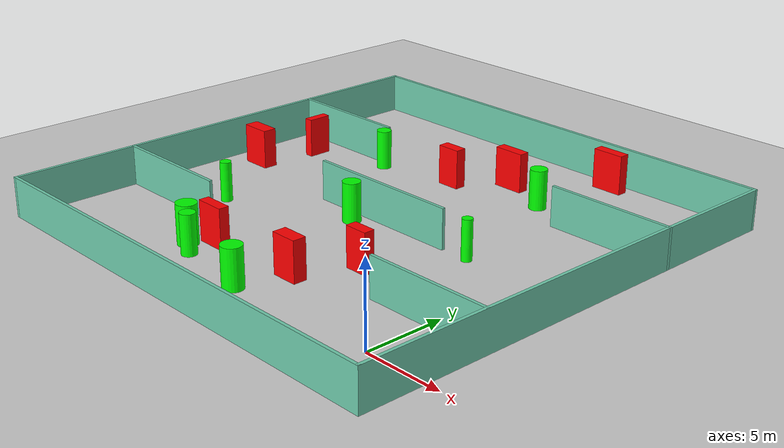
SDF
<sdf version="1.7">
 <world name="default">
  <light name="sun" type="directional">
   <pose>0 0 10 0 -0 0</pose>
   <diffuse>0.8 0.8 0.8 1</diffuse>
   <specular>0.2 0.2 0.2 1</specular>
   <attenuation>
    <range>1000</range>
    <constant>0.9</constant>
    <linear>0.01</linear>
    <quadratic>0.001</quadratic>
   </attenuation>
   <direction>-0.5 0.1 -0.9</direction>
   <spot><inner_angle>0</inner_angle><outer_angle>0</outer_angle><falloff>0</falloff></spot>
  </light>
  <model name="ground_plane">
   <static>1</static>
   <link name="link">
    <collision name="collision">
     <geometry><plane><normal>0 0 1</normal><size>100 100</size></plane></geometry>
     <surface>
      <contact><collide_bitmask>65535</collide_bitmask></contact>
      <friction><ode><mu>100</mu><mu2>50</mu2></ode></friction>
     </surface>
    </collision>
    <visual name="visual">
     <cast_shadows>0</cast_shadows>
     <geometry><plane><normal>0 0 1</normal><size>100 100</size></plane></geometry>
     <material>
      <script><uri>file://media/materials/scripts/gazebo.material</uri><name>Gazebo/Grey</name></script>
     </material>
    </visual>
   </link>
  </model>
  <gravity>0 0 -9.8</gravity>
  <magnetic_field>6e-06 2.3e-05 -4.2e-05</magnetic_field>
  <atmosphere type="adiabatic"/>
  <physics type="ode">
   <max_step_size>0.001</max_step_size>
   <real_time_factor>1</real_time_factor>
   <real_time_update_rate>1000</real_time_update_rate>
  </physics>
  <scene><ambient>0.4 0.4 0.4 1</ambient><background>0.7 0.7 0.7 1</background><shadows>1</shadows></scene>
  <spherical_coordinates>
   <surface_model>EARTH_WGS84</surface_model>
   <latitude_deg>0</latitude_deg>
   <longitude_deg>0</longitude_deg>
   <elevation>0</elevation>
   <heading_deg>0</heading_deg>
  </spherical_coordinates>
  <model name="my_base_walls">
   <link name="Wall_10">
    <collision name="Wall_10_Collision">
     <geometry><box><size>8.2 0.2 2.5</size></box></geometry>
     <pose>0 0 1.25 0 -0 0</pose>
    </collision>
    <visual name="Wall_10_Visual">
     <pose>0 0 1.25 0 -0 0</pose>
     <geometry><box><size>8.2 0.2 2.5</size></box></geometry>
     <material>
      <script><uri>file://media/materials/scripts/gazebo.material</uri><name>Gazebo/Grey</name></script>
      <ambient>0.435294 0.796078 0.67451 1</ambient>
     </material>
     <meta><layer>0</layer></meta>
    </visual>
    <pose>-11 -7 0 0 -0 0</pose>
   </link>
   <link name="Wall_12">
    <collision name="Wall_12_Collision">
     <geometry><box><size>8.2 0.2 2.5</size></box></geometry>
     <pose>0 0 1.25 0 -0 0</pose>
    </collision>
    <visual name="Wall_12_Visual">
     <pose>0 0 1.25 0 -0 0</pose>
     <geometry><box><size>8.2 0.2 2.5</size></box></geometry>
     <material>
      <script><uri>file://media/materials/scripts/gazebo.material</uri><name>Gazebo/Grey</name></script>
      <ambient>0.435294 0.796078 0.67451 1</ambient>
     </material>
     <meta><layer>0</layer></meta>
    </visual>
    <pose>-11 7 0 0 -0 0</pose>
   </link>
   <link name="Wall_14">
    <collision name="Wall_14_Collision">
     <geometry><box><size>8.2 0.2 2.5</size></box></geometry>
     <pose>0 0 1.25 0 -0 0</pose>
    </collision>
    <visual name="Wall_14_Visual">
     <pose>0 0 1.25 0 -0 0</pose>
     <geometry><box><size>8.2 0.2 2.5</size></box></geometry>
     <material>
      <script><uri>file://media/materials/scripts/gazebo.material</uri><name>Gazebo/Grey</name></script>
      <ambient>0.435294 0.796078 0.67451 1</ambient>
     </material>
     <meta><layer>0</layer></meta>
    </visual>
    <pose>11 7 0 0 -0 3.14159</pose>
   </link>
   <link name="Wall_16">
    <collision name="Wall_16_Collision">
     <geometry><box><size>10.2 0.2 2.5</size></box></geometry>
     <pose>0 0 1.25 0 -0 0</pose>
    </collision>
    <visual name="Wall_16_Visual">
     <pose>0 0 1.25 0 -0 0</pose>
     <geometry><box><size>10.2 0.2 2.5</size></box></geometry>
     <material>
      <script><uri>file://media/materials/scripts/gazebo.material</uri><name>Gazebo/Grey</name></script>
      <ambient>0.435294 0.796078 0.67451 1</ambient>
     </material>
     <meta><layer>0</layer></meta>
    </visual>
    <pose>0 0 0 0 -0 3.14159</pose>
   </link>
   <link name="Wall_2">
    <collision name="Wall_2_Collision">
     <geometry><box><size>30.2 0.2 2.5</size></box></geometry>
     <pose>0 0 1.25 0 -0 0</pose>
    </collision>
    <visual name="Wall_2_Visual">
     <pose>0 0 1.25 0 -0 0</pose>
     <geometry><box><size>30.2 0.2 2.5</size></box></geometry>
     <material>
      <script><uri>file://media/materials/scripts/gazebo.material</uri><name>Gazebo/Grey</name></script>
      <ambient>0.435294 0.796078 0.67451 1</ambient>
     </material>
     <meta><layer>0</layer></meta>
    </visual>
    <pose>0 -15 0 0 -0 3.14159</pose>
   </link>
   <link name="Wall_3">
    <collision name="Wall_3_Collision">
     <geometry><box><size>30.2 0.2 2.5</size></box></geometry>
     <pose>0 0 1.25 0 -0 0</pose>
    </collision>
    <visual name="Wall_3_Visual">
     <pose>0 0 1.25 0 -0 0</pose>
     <geometry><box><size>30.2 0.2 2.5</size></box></geometry>
     <material>
      <script><uri>file://media/materials/scripts/gazebo.material</uri><name>Gazebo/Grey</name></script>
      <ambient>0.435294 0.796078 0.67451 1</ambient>
     </material>
     <meta><layer>0</layer></meta>
    </visual>
    <pose>-15 0 0 0 -0 1.5708</pose>
   </link>
   <link name="Wall_4">
    <collision name="Wall_4_Collision">
     <geometry><box><size>30.2 0.2 2.5</size></box></geometry>
     <pose>0 0 1.25 0 -0 0</pose>
    </collision>
    <visual name="Wall_4_Visual">
     <pose>0 0 1.25 0 -0 0</pose>
     <geometry><box><size>30.2 0.2 2.5</size></box></geometry>
     <material>
      <script><uri>file://media/materials/scripts/gazebo.material</uri><name>Gazebo/Grey</name></script>
      <ambient>0.435294 0.796078 0.67451 1</ambient>
     </material>
     <meta><layer>0</layer></meta>
    </visual>
    <pose>0 15 0 0 -0 0</pose>
   </link>
   <link name="Wall_6">
    <collision name="Wall_6_Collision">
     <geometry><box><size>30.2 0.2 2.5</size></box></geometry>
     <pose>0 0 1.25 0 -0 0</pose>
    </collision>
    <visual name="Wall_6_Visual">
     <pose>0 0 1.25 0 -0 0</pose>
     <geometry><box><size>30.2 0.2 2.5</size></box></geometry>
     <material>
      <script><uri>file://media/materials/scripts/gazebo.material</uri><name>Gazebo/Grey</name></script>
      <ambient>0.435294 0.796078 0.67451 1</ambient>
     </material>
     <meta><layer>0</layer></meta>
    </visual>
    <pose>15 0 0 0 -0 1.5708</pose>
   </link>
   <link name="Wall_8">
    <collision name="Wall_8_Collision">
     <geometry><box><size>8.2 0.2 2.5</size></box></geometry>
     <pose>0 0 1.25 0 -0 0</pose>
    </collision>
    <visual name="Wall_8_Visual">
     <pose>0 0 1.25 0 -0 0</pose>
     <geometry><box><size>8.2 0.2 2.5</size></box></geometry>
     <material>
      <script><uri>file://media/materials/scripts/gazebo.material</uri><name>Gazebo/Grey</name></script>
      <ambient>0.435294 0.796078 0.67451 1</ambient>
     </material>
     <meta><layer>0</layer></meta>
    </visual>
    <pose>11 -7 0 0 -0 3.14159</pose>
   </link>
   <static>1</static>
   <pose>-11 11 0 0 -0 0</pose>
  </model>
  <model name="cylinder1">
   <static>1</static>
   <link name="link">
    <inertial>
     <mass>1</mass>
     <inertia><ixx>0.5</ixx><ixy>0</ixy><ixz>0</ixz><iyy>0.5</iyy><iyz>0</iyz><izz>1</izz></inertia>
    </inertial>
    <collision name="collision">
     <geometry><cylinder><radius>0.4646212786020338</radius><length>2.5</length></cylinder></geometry>
    </collision>
    <visual name="visual">
     <geometry><cylinder><radius>0.4646212786020338</radius><length>2.5</length></cylinder></geometry>
     <material>
      <ambient>0 1 0 1</ambient>
      <diffuse>0 1 0 1</diffuse>
      <specular>0.1 0.1 0.1 1</specular>
      <emissive>0 0 0 0</emissive>
     </material>
    </visual>
   </link>
   <pose>-17.723985815289065 17.381715585066683 1.25 0 0 0</pose>
  </model>
  <model name="cylinder2">
   <static>1</static>
   <link name="link">
    <inertial>
     <mass>1</mass>
     <inertia><ixx>0.5</ixx><ixy>0</ixy><ixz>0</ixz><iyy>0.5</iyy><iyz>0</iyz><izz>1</izz></inertia>
    </inertial>
    <collision name="collision">
     <geometry><cylinder><radius>0.47420890911847235</radius><length>2.5</length></cylinder></geometry>
    </collision>
    <visual name="visual">
     <geometry><cylinder><radius>0.47420890911847235</radius><length>2.5</length></cylinder></geometry>
     <material>
      <ambient>0 1 0 1</ambient>
      <diffuse>0 1 0 1</diffuse>
      <specular>0.1 0.1 0.1 1</specular>
      <emissive>0 0 0 0</emissive>
     </material>
    </visual>
   </link>
   <pose>-14.925715013688789 0.30082503693919715 1.25 0 0 0</pose>
  </model>
  <model name="cylinder3">
   <static>1</static>
   <link name="link">
    <inertial>
     <mass>1</mass>
     <inertia><ixx>0.5</ixx><ixy>0</ixy><ixz>0</ixz><iyy>0.5</iyy><iyz>0</iyz><izz>1</izz></inertia>
    </inertial>
    <collision name="collision">
     <geometry><cylinder><radius>0.6299463656205889</radius><length>2.5</length></cylinder></geometry>
    </collision>
    <visual name="visual">
     <geometry><cylinder><radius>0.6299463656205889</radius><length>2.5</length></cylinder></geometry>
     <material>
      <ambient>0 1 0 1</ambient>
      <diffuse>0 1 0 1</diffuse>
      <specular>0.1 0.1 0.1 1</specular>
      <emissive>0 0 0 0</emissive>
     </material>
    </visual>
   </link>
   <pose>-9.833917489122909 -0.4826178510989054 1.25 0 0 0</pose>
  </model>
  <model name="cylinder4">
   <static>1</static>
   <link name="link">
    <inertial>
     <mass>1</mass>
     <inertia><ixx>0.5</ixx><ixy>0</ixy><ixz>0</ixz><iyy>0.5</iyy><iyz>0</iyz><izz>1</izz></inertia>
    </inertial>
    <collision name="collision">
     <geometry><cylinder><radius>0.5311325372622764</radius><length>2.5</length></cylinder></geometry>
    </collision>
    <visual name="visual">
     <geometry><cylinder><radius>0.5311325372622764</radius><length>2.5</length></cylinder></geometry>
     <material>
      <ambient>0 1 0 1</ambient>
      <diffuse>0 1 0 1</diffuse>
      <specular>0.1 0.1 0.1 1</specular>
      <emissive>0 0 0 0</emissive>
     </material>
    </visual>
   </link>
   <pose>-6.449419112421545 19.44436419433052 1.25 0 0 0</pose>
  </model>
  <model name="cylinder5">
   <static>1</static>
   <link name="link">
    <inertial>
     <mass>1</mass>
     <inertia><ixx>0.5</ixx><ixy>0</ixy><ixz>0</ixz><iyy>0.5</iyy><iyz>0</iyz><izz>1</izz></inertia>
    </inertial>
    <collision name="collision">
     <geometry><cylinder><radius>0.6347748671429732</radius><length>2.5</length></cylinder></geometry>
    </collision>
    <visual name="visual">
     <geometry><cylinder><radius>0.6347748671429732</radius><length>2.5</length></cylinder></geometry>
     <material>
      <ambient>0 1 0 1</ambient>
      <diffuse>0 1 0 1</diffuse>
      <specular>0.1 0.1 0.1 1</specular>
      <emissive>0 0 0 0</emissive>
     </material>
    </visual>
   </link>
   <pose>-16.121986090622336 1.0554088623854447 1.25 0 0 0</pose>
  </model>
  <model name="cylinder6">
   <static>1</static>
   <link name="link">
    <inertial>
     <mass>1</mass>
     <inertia><ixx>0.5</ixx><ixy>0</ixy><ixz>0</ixz><iyy>0.5</iyy><iyz>0</iyz><izz>1</izz></inertia>
    </inertial>
    <collision name="collision">
     <geometry><cylinder><radius>0.35255871610641004</radius><length>2.5</length></cylinder></geometry>
    </collision>
    <visual name="visual">
     <geometry><cylinder><radius>0.35255871610641004</radius><length>2.5</length></cylinder></geometry>
     <material>
      <ambient>0 1 0 1</ambient>
      <diffuse>0 1 0 1</diffuse>
      <specular>0.1 0.1 0.1 1</specular>
      <emissive>0 0 0 0</emissive>
     </material>
    </visual>
   </link>
   <pose>-19.926699015370573 6.519288135718778 1.25 0 0 0</pose>
  </model>
  <model name="cylinder7">
   <static>1</static>
   <link name="link">
    <inertial>
     <mass>1</mass>
     <inertia><ixx>0.5</ixx><ixy>0</ixy><ixz>0</ixz><iyy>0.5</iyy><iyz>0</iyz><izz>1</izz></inertia>
    </inertial>
    <collision name="collision">
     <geometry><cylinder><radius>0.31865654467116683</radius><length>2.5</length></cylinder></geometry>
    </collision>
    <visual name="visual">
     <geometry><cylinder><radius>0.31865654467116683</radius><length>2.5</length></cylinder></geometry>
     <material>
      <ambient>0 1 0 1</ambient>
      <diffuse>0 1 0 1</diffuse>
      <specular>0.1 0.1 0.1 1</specular>
      <emissive>0 0 0 0</emissive>
     </material>
    </visual>
   </link>
   <pose>-4.06394352208779 10.9624908614219 1.25 0 0 0</pose>
  </model>
  <model name="cylinder8">
   <static>1</static>
   <link name="link">
    <inertial>
     <mass>1</mass>
     <inertia><ixx>0.5</ixx><ixy>0</ixy><ixz>0</ixz><iyy>0.5</iyy><iyz>0</iyz><izz>1</izz></inertia>
    </inertial>
    <collision name="collision">
     <geometry><cylinder><radius>0.5562911917981084</radius><length>2.5</length></cylinder></geometry>
    </collision>
    <visual name="visual">
     <geometry><cylinder><radius>0.5562911917981084</radius><length>2.5</length></cylinder></geometry>
     <material>
      <ambient>0 1 0 1</ambient>
      <diffuse>0 1 0 1</diffuse>
      <specular>0.1 0.1 0.1 1</specular>
      <emissive>0 0 0 0</emissive>
     </material>
    </visual>
   </link>
   <pose>-12.395712611971016 9.959876083030053 1.25 0 0 0</pose>
  </model>
  <model name="box1">
   <static>1</static>
   <link name="link">
    <inertial>
     <mass>1</mass>
     <inertia><ixx>0.083</ixx><ixy>0</ixy><ixz>0</ixz><iyy>0.083</iyy><iyz>0</iyz><izz>0.083</izz></inertia>
    </inertial>
    <collision name="collision">
     <geometry><box><size>1.999514374239556 0.6748453550592661 2.5</size></box></geometry>
    </collision>
    <visual name="visual">
     <geometry><box><size>1.999514374239556 0.6748453550592661 2.5</size></box></geometry>
     <material>
      <ambient>1 0 0 1</ambient>
      <diffuse>1 0 0 1</diffuse>
      <specular>0.1 0.1 0.1 1</specular>
      <emissive>0 0 0 0</emissive>
     </material>
    </visual>
    <sensor name="my_contact" type="contact">
     <contact><collision>box_collision</collision><topic>__default_topic__</topic></contact>
    </sensor>
   </link>
   <pose>-9.758730625734298 20.743642424784575 1.25 0 0 0</pose>
  </model>
  <model name="box2">
   <static>1</static>
   <link name="link">
    <inertial>
     <mass>1</mass>
     <inertia><ixx>0.083</ixx><ixy>0</ixy><ixz>0</ixz><iyy>0.083</iyy><iyz>0</iyz><izz>0.083</izz></inertia>
    </inertial>
    <collision name="collision">
     <geometry><box><size>0.5432441737179567 1.5287357849852679 2.5</size></box></geometry>
    </collision>
    <visual name="visual">
     <geometry><box><size>0.5432441737179567 1.5287357849852679 2.5</size></box></geometry>
     <material>
      <ambient>1 0 0 1</ambient>
      <diffuse>1 0 0 1</diffuse>
      <specular>0.1 0.1 0.1 1</specular>
      <emissive>0 0 0 0</emissive>
     </material>
    </visual>
    <sensor name="my_contact" type="contact">
     <contact><collision>box_collision</collision><topic>__default_topic__</topic></contact>
    </sensor>
   </link>
   <pose>-22.63011801250365 15.91906268942948 1.25 0 0 0</pose>
  </model>
  <model name="box3">
   <static>1</static>
   <link name="link">
    <inertial>
     <mass>1</mass>
     <inertia><ixx>0.083</ixx><ixy>0</ixy><ixz>0</ixz><iyy>0.083</iyy><iyz>0</iyz><izz>0.083</izz></inertia>
    </inertial>
    <collision name="collision">
     <geometry><box><size>1.4764254483787451 0.6885383600055706 2.5</size></box></geometry>
    </collision>
    <visual name="visual">
     <geometry><box><size>1.4764254483787451 0.6885383600055706 2.5</size></box></geometry>
     <material>
      <ambient>1 0 0 1</ambient>
      <diffuse>1 0 0 1</diffuse>
      <specular>0.1 0.1 0.1 1</specular>
      <emissive>0 0 0 0</emissive>
     </material>
    </visual>
    <sensor name="my_contact" type="contact">
     <contact><collision>box_collision</collision><topic>__default_topic__</topic></contact>
    </sensor>
   </link>
   <pose>-7.020416567375069 5.867903710240762 1.25 0 0 0</pose>
  </model>
  <model name="box4">
   <static>1</static>
   <link name="link">
    <inertial>
     <mass>1</mass>
     <inertia><ixx>0.083</ixx><ixy>0</ixy><ixz>0</ixz><iyy>0.083</iyy><iyz>0</iyz><izz>0.083</izz></inertia>
    </inertial>
    <collision name="collision">
     <geometry><box><size>1.9162084172120701 0.8991735642177783 2.5</size></box></geometry>
    </collision>
    <visual name="visual">
     <geometry><box><size>1.9162084172120701 0.8991735642177783 2.5</size></box></geometry>
     <material>
      <ambient>1 0 0 1</ambient>
      <diffuse>1 0 0 1</diffuse>
      <specular>0.1 0.1 0.1 1</specular>
      <emissive>0 0 0 0</emissive>
     </material>
    </visual>
    <sensor name="my_contact" type="contact">
     <contact><collision>box_collision</collision><topic>__default_topic__</topic></contact>
    </sensor>
   </link>
   <pose>-23.61407590150057 11.999944755898834 1.25 0 0 0</pose>
  </model>
  <model name="box5">
   <static>1</static>
   <link name="link">
    <inertial>
     <mass>1</mass>
     <inertia><ixx>0.083</ixx><ixy>0</ixy><ixz>0</ixz><iyy>0.083</iyy><iyz>0</iyz><izz>0.083</izz></inertia>
    </inertial>
    <collision name="collision">
     <geometry><box><size>1.5225247403515065 0.7011124581753512 2.5</size></box></geometry>
    </collision>
    <visual name="visual">
     <geometry><box><size>1.5225247403515065 0.7011124581753512 2.5</size></box></geometry>
     <material>
      <ambient>1 0 0 1</ambient>
      <diffuse>1 0 0 1</diffuse>
      <specular>0.1 0.1 0.1 1</specular>
      <emissive>0 0 0 0</emissive>
     </material>
    </visual>
    <sensor name="my_contact" type="contact">
     <contact><collision>box_collision</collision><topic>__default_topic__</topic></contact>
    </sensor>
   </link>
   <pose>-12.582856700788383 18.37478090163571 1.25 0 0 0</pose>
  </model>
  <model name="box6">
   <static>1</static>
   <link name="link">
    <inertial>
     <mass>1</mass>
     <inertia><ixx>0.083</ixx><ixy>0</ixy><ixz>0</ixz><iyy>0.083</iyy><iyz>0</iyz><izz>0.083</izz></inertia>
    </inertial>
    <collision name="collision">
     <geometry><box><size>2.0454691955020823 0.6626981366915932 2.5</size></box></geometry>
    </collision>
    <visual name="visual">
     <geometry><box><size>2.0454691955020823 0.6626981366915932 2.5</size></box></geometry>
     <material>
      <ambient>1 0 0 1</ambient>
      <diffuse>1 0 0 1</diffuse>
      <specular>0.1 0.1 0.1 1</specular>
      <emissive>0 0 0 0</emissive>
     </material>
    </visual>
    <sensor name="my_contact" type="contact">
     <contact><collision>box_collision</collision><topic>__default_topic__</topic></contact>
    </sensor>
   </link>
   <pose>-5.456072916206512 24.953583491077847 1.25 0 0 0</pose>
  </model>
  <model name="box7">
   <static>1</static>
   <link name="link">
    <inertial>
     <mass>1</mass>
     <inertia><ixx>0.083</ixx><ixy>0</ixy><ixz>0</ixz><iyy>0.083</iyy><iyz>0</iyz><izz>0.083</izz></inertia>
    </inertial>
    <collision name="collision">
     <geometry><box><size>1.8890755526288352 0.6437728751840673 2.5</size></box></geometry>
    </collision>
    <visual name="visual">
     <geometry><box><size>1.8890755526288352 0.6437728751840673 2.5</size></box></geometry>
     <material>
      <ambient>1 0 0 1</ambient>
      <diffuse>1 0 0 1</diffuse>
      <specular>0.1 0.1 0.1 1</specular>
      <emissive>0 0 0 0</emissive>
     </material>
    </visual>
    <sensor name="my_contact" type="contact">
     <contact><collision>box_collision</collision><topic>__default_topic__</topic></contact>
    </sensor>
   </link>
   <pose>-15.031641776629638 2.140797016350497 1.25 0 0 0</pose>
  </model>
  <model name="box8">
   <static>1</static>
   <link name="link">
    <inertial>
     <mass>1</mass>
     <inertia><ixx>0.083</ixx><ixy>0</ixy><ixz>0</ixz><iyy>0.083</iyy><iyz>0</iyz><izz>0.083</izz></inertia>
    </inertial>
    <collision name="collision">
     <geometry><box><size>1.6967088624594404 0.8504595906307753 2.5</size></box></geometry>
    </collision>
    <visual name="visual">
     <geometry><box><size>1.6967088624594404 0.8504595906307753 2.5</size></box></geometry>
     <material>
      <ambient>1 0 0 1</ambient>
      <diffuse>1 0 0 1</diffuse>
      <specular>0.1 0.1 0.1 1</specular>
      <emissive>0 0 0 0</emissive>
     </material>
    </visual>
    <sensor name="my_contact" type="contact">
     <contact><collision>box_collision</collision><topic>__default_topic__</topic></contact>
    </sensor>
   </link>
   <pose>-8.85368340167738 2.532198544448036 1.25 0 0 0</pose>
  </model>
 </world>
</sdf>
